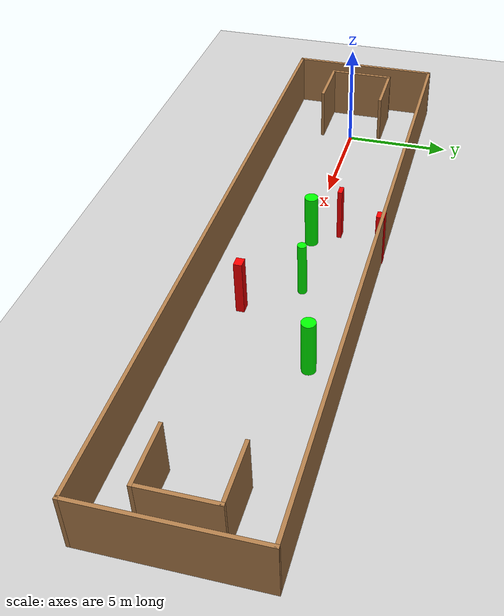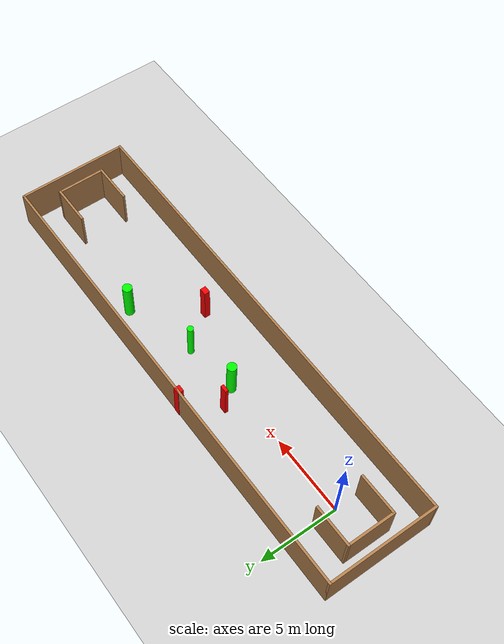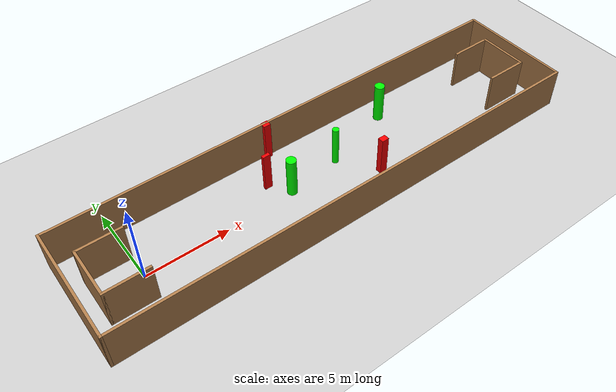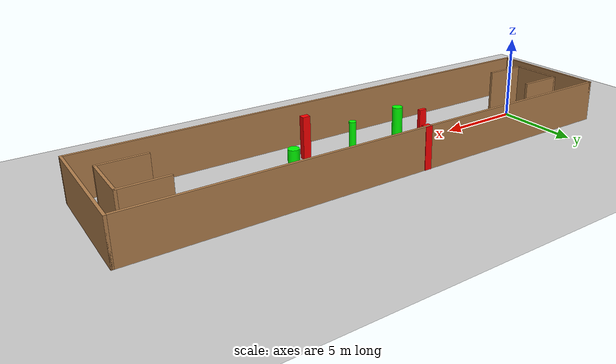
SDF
<sdf version="1.7">
 <world name="default">
  <light name="sun" type="directional">
   <pose>0 0 10 0 -0 0</pose>
   <diffuse>0.8 0.8 0.8 1</diffuse>
   <specular>0.2 0.2 0.2 1</specular>
   <attenuation>
    <range>1000</range>
    <constant>0.9</constant>
    <linear>0.01</linear>
    <quadratic>0.001</quadratic>
   </attenuation>
   <direction>-0.5 0.1 -0.9</direction>
   <spot><inner_angle>0</inner_angle><outer_angle>0</outer_angle><falloff>0</falloff></spot>
  </light>
  <model name="ground_plane">
   <static>1</static>
   <link name="link">
    <collision name="collision">
     <geometry><plane><normal>0 0 1</normal><size>100 100</size></plane></geometry>
     <surface>
      <contact><collide_bitmask>65535</collide_bitmask></contact>
      <friction><ode><mu>100</mu><mu2>50</mu2></ode></friction>
     </surface>
    </collision>
    <visual name="visual">
     <cast_shadows>0</cast_shadows>
     <geometry><plane><normal>0 0 1</normal><size>100 100</size></plane></geometry>
     <material>
      <script><uri>file://media/materials/scripts/gazebo.material</uri><name>Gazebo/Grey</name></script>
     </material>
    </visual>
   </link>
  </model>
  <gravity>0 0 -9.8</gravity>
  <magnetic_field>6e-06 2.3e-05 -4.2e-05</magnetic_field>
  <atmosphere type="adiabatic"/>
  <physics type="ode">
   <max_step_size>0.001</max_step_size>
   <real_time_factor>1</real_time_factor>
   <real_time_update_rate>1000</real_time_update_rate>
  </physics>
  <scene><ambient>0.4 0.4 0.4 1</ambient><background>0.7 0.7 0.7 1</background><shadows>1</shadows></scene>
  <spherical_coordinates>
   <surface_model>EARTH_WGS84</surface_model>
   <latitude_deg>0</latitude_deg>
   <longitude_deg>0</longitude_deg>
   <elevation>0</elevation>
   <heading_deg>0</heading_deg>
  </spherical_coordinates>
  <model name="my_base_walls">
   <link name="Wall_0">
    <collision name="Wall_0_Collision">
     <geometry><box><size>7.15 0.15 2.5</size></box></geometry>
     <pose>0 0 1.25 0 -0 0</pose>
    </collision>
    <visual name="Wall_0_Visual">
     <pose>0 0 1.25 0 -0 0</pose>
     <geometry><box><size>7.15 0.15 2.5</size></box></geometry>
     <material>
      <script><uri>file://media/materials/scripts/gazebo.material</uri><name>Gazebo/Wood</name></script>
      <ambient>1 1 1 1</ambient>
     </material>
     <meta><layer>0</layer></meta>
    </visual>
    <pose>-15 0 0 0 -0 1.5708</pose>
   </link>
   <link name="Wall_10">
    <collision name="Wall_10_Collision">
     <geometry><box><size>2.65 0.15 2.5</size></box></geometry>
     <pose>0 0 1.25 0 -0 0</pose>
    </collision>
    <visual name="Wall_10_Visual">
     <pose>0 0 1.25 0 -0 0</pose>
     <geometry><box><size>2.65 0.15 2.5</size></box></geometry>
     <material>
      <script><uri>file://media/materials/scripts/gazebo.material</uri><name>Gazebo/Wood</name></script>
      <ambient>1 1 1 1</ambient>
     </material>
     <meta><layer>0</layer></meta>
    </visual>
    <pose>-12.75 -1.5 0 0 -0 0</pose>
   </link>
   <link name="Wall_12">
    <collision name="Wall_12_Collision">
     <geometry><box><size>2.65 0.15 2.5</size></box></geometry>
     <pose>0 0 1.25 0 -0 0</pose>
    </collision>
    <visual name="Wall_12_Visual">
     <pose>0 0 1.25 0 -0 0</pose>
     <geometry><box><size>2.65 0.15 2.5</size></box></geometry>
     <material>
      <script><uri>file://media/materials/scripts/gazebo.material</uri><name>Gazebo/Wood</name></script>
      <ambient>1 1 1 1</ambient>
     </material>
     <meta><layer>0</layer></meta>
    </visual>
    <pose>-12.75 1.5 0 0 -0 0</pose>
   </link>
   <link name="Wall_14">
    <collision name="Wall_14_Collision">
     <geometry><box><size>3.15 0.15 2.5</size></box></geometry>
     <pose>0 0 1.25 0 -0 0</pose>
    </collision>
    <visual name="Wall_14_Visual">
     <pose>0 0 1.25 0 -0 0</pose>
     <geometry><box><size>3.15 0.15 2.5</size></box></geometry>
     <material>
      <script><uri>file://media/materials/scripts/gazebo.material</uri><name>Gazebo/Wood</name></script>
      <ambient>1 1 1 1</ambient>
     </material>
     <meta><layer>0</layer></meta>
    </visual>
    <pose>14 0 0 0 -0 -1.5708</pose>
   </link>
   <link name="Wall_15">
    <collision name="Wall_15_Collision">
     <geometry><box><size>2.65 0.15 2.5</size></box></geometry>
     <pose>0 0 1.25 0 -0 0</pose>
    </collision>
    <visual name="Wall_15_Visual">
     <pose>0 0 1.25 0 -0 0</pose>
     <geometry><box><size>2.65 0.15 2.5</size></box></geometry>
     <material>
      <script><uri>file://media/materials/scripts/gazebo.material</uri><name>Gazebo/Wood</name></script>
      <ambient>1 1 1 1</ambient>
     </material>
     <meta><layer>0</layer></meta>
    </visual>
    <pose>12.75 -1.5 0 0 -0 3.14159</pose>
   </link>
   <link name="Wall_17">
    <collision name="Wall_17_Collision">
     <geometry><box><size>2.65 0.15 2.5</size></box></geometry>
     <pose>0 0 1.25 0 -0 0</pose>
    </collision>
    <visual name="Wall_17_Visual">
     <pose>0 0 1.25 0 -0 0</pose>
     <geometry><box><size>2.65 0.15 2.5</size></box></geometry>
     <material>
      <script><uri>file://media/materials/scripts/gazebo.material</uri><name>Gazebo/Wood</name></script>
      <ambient>1 1 1 1</ambient>
     </material>
     <meta><layer>0</layer></meta>
    </visual>
    <pose>12.75 1.5 0 0 -0 3.14159</pose>
   </link>
   <link name="Wall_2">
    <collision name="Wall_2_Collision">
     <geometry><box><size>30.15 0.15 2.5</size></box></geometry>
     <pose>0 0 1.25 0 -0 0</pose>
    </collision>
    <visual name="Wall_2_Visual">
     <pose>0 0 1.25 0 -0 0</pose>
     <geometry><box><size>30.15 0.15 2.5</size></box></geometry>
     <material>
      <script><uri>file://media/materials/scripts/gazebo.material</uri><name>Gazebo/Wood</name></script>
      <ambient>1 1 1 1</ambient>
     </material>
     <meta><layer>0</layer></meta>
    </visual>
    <pose>-0 -3.5 0 0 -0 0</pose>
   </link>
   <link name="Wall_4">
    <collision name="Wall_4_Collision">
     <geometry><box><size>30.15 0.15 2.5</size></box></geometry>
     <pose>0 0 1.25 0 -0 0</pose>
    </collision>
    <visual name="Wall_4_Visual">
     <pose>0 0 1.25 0 -0 0</pose>
     <geometry><box><size>30.15 0.15 2.5</size></box></geometry>
     <material>
      <script><uri>file://media/materials/scripts/gazebo.material</uri><name>Gazebo/Wood</name></script>
      <ambient>1 1 1 1</ambient>
     </material>
     <meta><layer>0</layer></meta>
    </visual>
    <pose>-0 3.5 0 0 -0 0</pose>
   </link>
   <link name="Wall_6">
    <collision name="Wall_6_Collision">
     <geometry><box><size>7.15 0.15 2.5</size></box></geometry>
     <pose>0 0 1.25 0 -0 0</pose>
    </collision>
    <visual name="Wall_6_Visual">
     <pose>0 0 1.25 0 -0 0</pose>
     <geometry><box><size>7.15 0.15 2.5</size></box></geometry>
     <material>
      <script><uri>file://media/materials/scripts/gazebo.material</uri><name>Gazebo/Wood</name></script>
      <ambient>1 1 1 1</ambient>
     </material>
     <meta><layer>0</layer></meta>
    </visual>
    <pose>15 0 0 0 -0 -1.5708</pose>
   </link>
   <link name="Wall_9">
    <collision name="Wall_9_Collision">
     <geometry><box><size>3.15 0.15 2.5</size></box></geometry>
     <pose>0 0 1.25 0 -0 0</pose>
    </collision>
    <visual name="Wall_9_Visual">
     <pose>0 0 1.25 0 -0 0</pose>
     <geometry><box><size>3.15 0.15 2.5</size></box></geometry>
     <material>
      <script><uri>file://media/materials/scripts/gazebo.material</uri><name>Gazebo/Wood</name></script>
      <ambient>1 1 1 1</ambient>
     </material>
     <meta><layer>0</layer></meta>
    </visual>
    <pose>-14 0 0 0 -0 -1.5708</pose>
   </link>
   <static>1</static>
   <pose>11.5 0 0 0 -0 0</pose>
  </model>
  <model name="cylinder1">
   <static>1</static>
   <link name="link">
    <inertial>
     <mass>1</mass>
     <inertia><ixx>0.5</ixx><ixy>0</ixy><ixz>0</ixz><iyy>0.5</iyy><iyz>0</iyz><izz>1</izz></inertia>
    </inertial>
    <collision name="collision">
     <geometry><cylinder><radius>0.2998561882602989</radius><length>2.5</length></cylinder></geometry>
    </collision>
    <visual name="visual">
     <geometry><cylinder><radius>0.2998561882602989</radius><length>2.5</length></cylinder></geometry>
     <material>
      <ambient>0 1 0 1</ambient>
      <diffuse>0 1 0 1</diffuse>
      <specular>0.1 0.1 0.1 1</specular>
      <emissive>0 0 0 0</emissive>
     </material>
    </visual>
   </link>
   <pose>17.09424181018673 2.0490207298362932 1.25 0 0 0</pose>
  </model>
  <model name="cylinder2">
   <static>1</static>
   <link name="link">
    <inertial>
     <mass>1</mass>
     <inertia><ixx>0.5</ixx><ixy>0</ixy><ixz>0</ixz><iyy>0.5</iyy><iyz>0</iyz><izz>1</izz></inertia>
    </inertial>
    <collision name="collision">
     <geometry><cylinder><radius>0.19727415072656648</radius><length>2.5</length></cylinder></geometry>
    </collision>
    <visual name="visual">
     <geometry><cylinder><radius>0.19727415072656648</radius><length>2.5</length></cylinder></geometry>
     <material>
      <ambient>0 1 0 1</ambient>
      <diffuse>0 1 0 1</diffuse>
      <specular>0.1 0.1 0.1 1</specular>
      <emissive>0 0 0 0</emissive>
     </material>
    </visual>
   </link>
   <pose>12.667445436809002 0.6497848581145176 1.25 0 0 0</pose>
  </model>
  <model name="cylinder3">
   <static>1</static>
   <link name="link">
    <inertial>
     <mass>1</mass>
     <inertia><ixx>0.5</ixx><ixy>0</ixy><ixz>0</ixz><iyy>0.5</iyy><iyz>0</iyz><izz>1</izz></inertia>
    </inertial>
    <collision name="collision">
     <geometry><cylinder><radius>0.2985965860064822</radius><length>2.5</length></cylinder></geometry>
    </collision>
    <visual name="visual">
     <geometry><cylinder><radius>0.2985965860064822</radius><length>2.5</length></cylinder></geometry>
     <material>
      <ambient>0 1 0 1</ambient>
      <diffuse>0 1 0 1</diffuse>
      <specular>0.1 0.1 0.1 1</specular>
      <emissive>0 0 0 0</emissive>
     </material>
    </visual>
   </link>
   <pose>9.27458564064373 0.19990664157608506 1.25 0 0 0</pose>
  </model>
  <model name="box1">
   <static>1</static>
   <link name="link">
    <inertial>
     <mass>1</mass>
     <inertia><ixx>0.083</ixx><ixy>0</ixy><ixz>0</ixz><iyy>0.083</iyy><iyz>0</iyz><izz>0.083</izz></inertia>
    </inertial>
    <collision name="collision">
     <geometry><box><size>0.46117809323124864 0.20410012134317967 2.5</size></box></geometry>
    </collision>
    <visual name="visual">
     <geometry><box><size>0.46117809323124864 0.20410012134317967 2.5</size></box></geometry>
     <material>
      <ambient>1 0 0 1</ambient>
      <diffuse>1 0 0 1</diffuse>
      <specular>0.1 0.1 0.1 1</specular>
      <emissive>0 0 0 0</emissive>
     </material>
    </visual>
    <sensor name="my_contact" type="contact">
     <contact><collision>box_collision</collision><topic>__default_topic__</topic></contact>
    </sensor>
   </link>
   <pose>8.406754309896826 1.3278878820142452 1.25 0 0 0</pose>
  </model>
  <model name="box2">
   <static>1</static>
   <link name="link">
    <inertial>
     <mass>1</mass>
     <inertia><ixx>0.083</ixx><ixy>0</ixy><ixz>0</ixz><iyy>0.083</iyy><iyz>0</iyz><izz>0.083</izz></inertia>
    </inertial>
    <collision name="collision">
     <geometry><box><size>0.4565457897306327 0.3600049792326785 2.5</size></box></geometry>
    </collision>
    <visual name="visual">
     <geometry><box><size>0.4565457897306327 0.3600049792326785 2.5</size></box></geometry>
     <material>
      <ambient>1 0 0 1</ambient>
      <diffuse>1 0 0 1</diffuse>
      <specular>0.1 0.1 0.1 1</specular>
      <emissive>0 0 0 0</emissive>
     </material>
    </visual>
    <sensor name="my_contact" type="contact">
     <contact><collision>box_collision</collision><topic>__default_topic__</topic></contact>
    </sensor>
   </link>
   <pose>14.31678231260608 -1.5367447779155208 1.25 0 0 0</pose>
  </model>
  <model name="box3">
   <static>1</static>
   <link name="link">
    <inertial>
     <mass>1</mass>
     <inertia><ixx>0.083</ixx><ixy>0</ixy><ixz>0</ixz><iyy>0.083</iyy><iyz>0</iyz><izz>0.083</izz></inertia>
    </inertial>
    <collision name="collision">
     <geometry><box><size>0.43167345033249405 0.37305023522015496 2.5</size></box></geometry>
    </collision>
    <visual name="visual">
     <geometry><box><size>0.43167345033249405 0.37305023522015496 2.5</size></box></geometry>
     <material>
      <ambient>1 0 0 1</ambient>
      <diffuse>1 0 0 1</diffuse>
      <specular>0.1 0.1 0.1 1</specular>
      <emissive>0 0 0 0</emissive>
     </material>
    </visual>
    <sensor name="my_contact" type="contact">
     <contact><collision>box_collision</collision><topic>__default_topic__</topic></contact>
    </sensor>
   </link>
   <pose>9.807273842091174 3.4155633874519644 1.25 0 0 0</pose>
  </model>
 </world>
</sdf>
